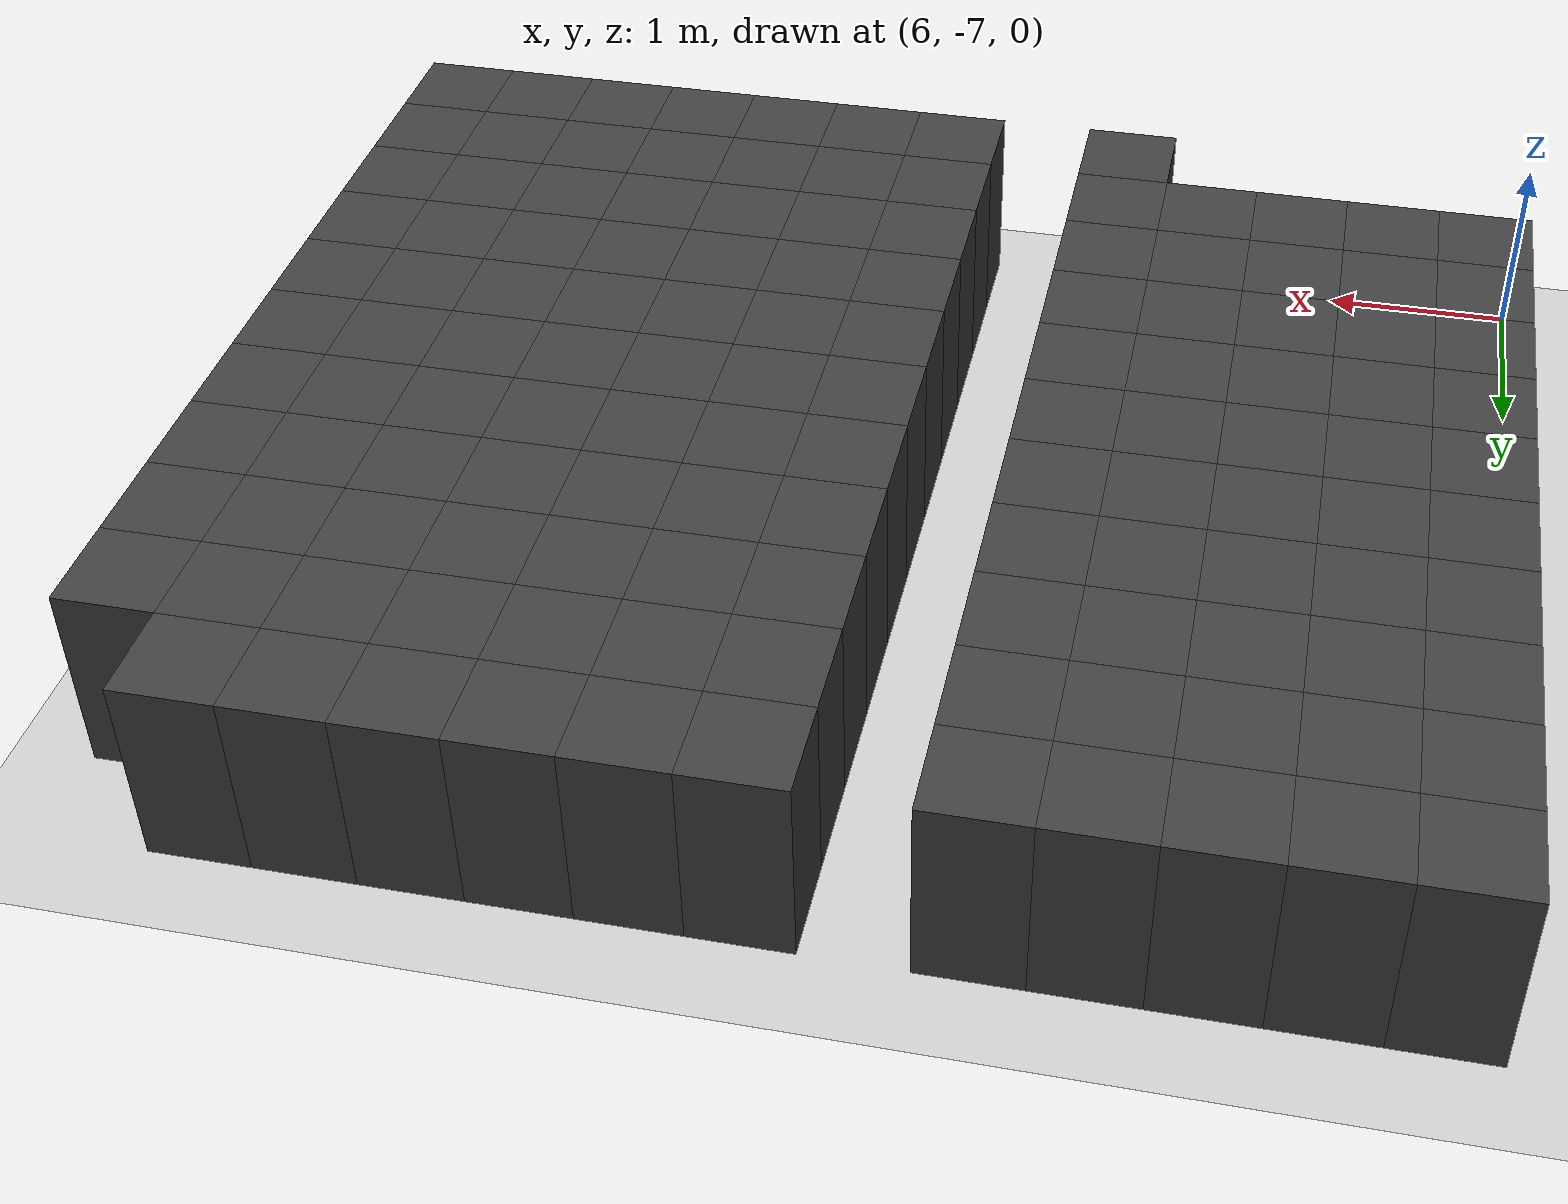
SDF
<sdf version="1.7">
 <world name="map_11672">
  <model name="ground_plane">
   <static>true</static>
   <link name="link">
    <collision name="collision">
     <geometry><plane><normal>0 0 1</normal><size>200 200</size></plane></geometry>
    </collision>
    <visual name="visual">
     <geometry><plane><normal>0 0 1</normal><size>200 200</size></plane></geometry>
     <material><ambient>0.8 0.8 0.8 1</ambient><diffuse>0.8 0.8 0.8 1</diffuse></material>
    </visual>
   </link>
  </model>
  <model name="maze_environment">
   <static>true</static>
   <link name="wall_1183">
    <pose>6.250 -1.750 0.500 0 0 0</pose>
    <collision name="col"><geometry><box><size>0.5 0.5 1.0</size></box></geometry></collision>
    <visual name="vis">
     <geometry><box><size>0.5 0.5 1.0</size></box></geometry>
     <material><ambient>0.15 0.15 0.15 1</ambient><diffuse>0.25 0.25 0.25 1</diffuse></material>
    </visual>
   </link>
   <link name="wall_1184">
    <pose>6.750 -1.750 0.500 0 0 0</pose>
    <collision name="col"><geometry><box><size>0.5 0.5 1.0</size></box></geometry></collision>
    <visual name="vis">
     <geometry><box><size>0.5 0.5 1.0</size></box></geometry>
     <material><ambient>0.15 0.15 0.15 1</ambient><diffuse>0.25 0.25 0.25 1</diffuse></material>
    </visual>
   </link>
   <link name="wall_1185">
    <pose>7.250 -1.750 0.500 0 0 0</pose>
    <collision name="col"><geometry><box><size>0.5 0.5 1.0</size></box></geometry></collision>
    <visual name="vis">
     <geometry><box><size>0.5 0.5 1.0</size></box></geometry>
     <material><ambient>0.15 0.15 0.15 1</ambient><diffuse>0.25 0.25 0.25 1</diffuse></material>
    </visual>
   </link>
   <link name="wall_1186">
    <pose>7.750 -1.750 0.500 0 0 0</pose>
    <collision name="col"><geometry><box><size>0.5 0.5 1.0</size></box></geometry></collision>
    <visual name="vis">
     <geometry><box><size>0.5 0.5 1.0</size></box></geometry>
     <material><ambient>0.15 0.15 0.15 1</ambient><diffuse>0.25 0.25 0.25 1</diffuse></material>
    </visual>
   </link>
   <link name="wall_1187">
    <pose>8.250 -1.750 0.500 0 0 0</pose>
    <collision name="col"><geometry><box><size>0.5 0.5 1.0</size></box></geometry></collision>
    <visual name="vis">
     <geometry><box><size>0.5 0.5 1.0</size></box></geometry>
     <material><ambient>0.15 0.15 0.15 1</ambient><diffuse>0.25 0.25 0.25 1</diffuse></material>
    </visual>
   </link>
   <link name="wall_1188">
    <pose>9.250 -1.750 0.500 0 0 0</pose>
    <collision name="col"><geometry><box><size>0.5 0.5 1.0</size></box></geometry></collision>
    <visual name="vis">
     <geometry><box><size>0.5 0.5 1.0</size></box></geometry>
     <material><ambient>0.15 0.15 0.15 1</ambient><diffuse>0.25 0.25 0.25 1</diffuse></material>
    </visual>
   </link>
   <link name="wall_1189">
    <pose>9.750 -1.750 0.500 0 0 0</pose>
    <collision name="col"><geometry><box><size>0.5 0.5 1.0</size></box></geometry></collision>
    <visual name="vis">
     <geometry><box><size>0.5 0.5 1.0</size></box></geometry>
     <material><ambient>0.15 0.15 0.15 1</ambient><diffuse>0.25 0.25 0.25 1</diffuse></material>
    </visual>
   </link>
   <link name="wall_1190">
    <pose>10.250 -1.750 0.500 0 0 0</pose>
    <collision name="col"><geometry><box><size>0.5 0.5 1.0</size></box></geometry></collision>
    <visual name="vis">
     <geometry><box><size>0.5 0.5 1.0</size></box></geometry>
     <material><ambient>0.15 0.15 0.15 1</ambient><diffuse>0.25 0.25 0.25 1</diffuse></material>
    </visual>
   </link>
   <link name="wall_1191">
    <pose>10.750 -1.750 0.500 0 0 0</pose>
    <collision name="col"><geometry><box><size>0.5 0.5 1.0</size></box></geometry></collision>
    <visual name="vis">
     <geometry><box><size>0.5 0.5 1.0</size></box></geometry>
     <material><ambient>0.15 0.15 0.15 1</ambient><diffuse>0.25 0.25 0.25 1</diffuse></material>
    </visual>
   </link>
   <link name="wall_1192">
    <pose>11.250 -1.750 0.500 0 0 0</pose>
    <collision name="col"><geometry><box><size>0.5 0.5 1.0</size></box></geometry></collision>
    <visual name="vis">
     <geometry><box><size>0.5 0.5 1.0</size></box></geometry>
     <material><ambient>0.15 0.15 0.15 1</ambient><diffuse>0.25 0.25 0.25 1</diffuse></material>
    </visual>
   </link>
   <link name="wall_1193">
    <pose>11.750 -1.750 0.500 0 0 0</pose>
    <collision name="col"><geometry><box><size>0.5 0.5 1.0</size></box></geometry></collision>
    <visual name="vis">
     <geometry><box><size>0.5 0.5 1.0</size></box></geometry>
     <material><ambient>0.15 0.15 0.15 1</ambient><diffuse>0.25 0.25 0.25 1</diffuse></material>
    </visual>
   </link>
   <link name="wall_1228">
    <pose>6.250 -2.250 0.500 0 0 0</pose>
    <collision name="col"><geometry><box><size>0.5 0.5 1.0</size></box></geometry></collision>
    <visual name="vis">
     <geometry><box><size>0.5 0.5 1.0</size></box></geometry>
     <material><ambient>0.15 0.15 0.15 1</ambient><diffuse>0.25 0.25 0.25 1</diffuse></material>
    </visual>
   </link>
   <link name="wall_1229">
    <pose>6.750 -2.250 0.500 0 0 0</pose>
    <collision name="col"><geometry><box><size>0.5 0.5 1.0</size></box></geometry></collision>
    <visual name="vis">
     <geometry><box><size>0.5 0.5 1.0</size></box></geometry>
     <material><ambient>0.15 0.15 0.15 1</ambient><diffuse>0.25 0.25 0.25 1</diffuse></material>
    </visual>
   </link>
   <link name="wall_1230">
    <pose>7.250 -2.250 0.500 0 0 0</pose>
    <collision name="col"><geometry><box><size>0.5 0.5 1.0</size></box></geometry></collision>
    <visual name="vis">
     <geometry><box><size>0.5 0.5 1.0</size></box></geometry>
     <material><ambient>0.15 0.15 0.15 1</ambient><diffuse>0.25 0.25 0.25 1</diffuse></material>
    </visual>
   </link>
   <link name="wall_1231">
    <pose>7.750 -2.250 0.500 0 0 0</pose>
    <collision name="col"><geometry><box><size>0.5 0.5 1.0</size></box></geometry></collision>
    <visual name="vis">
     <geometry><box><size>0.5 0.5 1.0</size></box></geometry>
     <material><ambient>0.15 0.15 0.15 1</ambient><diffuse>0.25 0.25 0.25 1</diffuse></material>
    </visual>
   </link>
   <link name="wall_1232">
    <pose>8.250 -2.250 0.500 0 0 0</pose>
    <collision name="col"><geometry><box><size>0.5 0.5 1.0</size></box></geometry></collision>
    <visual name="vis">
     <geometry><box><size>0.5 0.5 1.0</size></box></geometry>
     <material><ambient>0.15 0.15 0.15 1</ambient><diffuse>0.25 0.25 0.25 1</diffuse></material>
    </visual>
   </link>
   <link name="wall_1233">
    <pose>9.250 -2.250 0.500 0 0 0</pose>
    <collision name="col"><geometry><box><size>0.5 0.5 1.0</size></box></geometry></collision>
    <visual name="vis">
     <geometry><box><size>0.5 0.5 1.0</size></box></geometry>
     <material><ambient>0.15 0.15 0.15 1</ambient><diffuse>0.25 0.25 0.25 1</diffuse></material>
    </visual>
   </link>
   <link name="wall_1234">
    <pose>9.750 -2.250 0.500 0 0 0</pose>
    <collision name="col"><geometry><box><size>0.5 0.5 1.0</size></box></geometry></collision>
    <visual name="vis">
     <geometry><box><size>0.5 0.5 1.0</size></box></geometry>
     <material><ambient>0.15 0.15 0.15 1</ambient><diffuse>0.25 0.25 0.25 1</diffuse></material>
    </visual>
   </link>
   <link name="wall_1235">
    <pose>10.250 -2.250 0.500 0 0 0</pose>
    <collision name="col"><geometry><box><size>0.5 0.5 1.0</size></box></geometry></collision>
    <visual name="vis">
     <geometry><box><size>0.5 0.5 1.0</size></box></geometry>
     <material><ambient>0.15 0.15 0.15 1</ambient><diffuse>0.25 0.25 0.25 1</diffuse></material>
    </visual>
   </link>
   <link name="wall_1236">
    <pose>10.750 -2.250 0.500 0 0 0</pose>
    <collision name="col"><geometry><box><size>0.5 0.5 1.0</size></box></geometry></collision>
    <visual name="vis">
     <geometry><box><size>0.5 0.5 1.0</size></box></geometry>
     <material><ambient>0.15 0.15 0.15 1</ambient><diffuse>0.25 0.25 0.25 1</diffuse></material>
    </visual>
   </link>
   <link name="wall_1237">
    <pose>11.250 -2.250 0.500 0 0 0</pose>
    <collision name="col"><geometry><box><size>0.5 0.5 1.0</size></box></geometry></collision>
    <visual name="vis">
     <geometry><box><size>0.5 0.5 1.0</size></box></geometry>
     <material><ambient>0.15 0.15 0.15 1</ambient><diffuse>0.25 0.25 0.25 1</diffuse></material>
    </visual>
   </link>
   <link name="wall_1238">
    <pose>11.750 -2.250 0.500 0 0 0</pose>
    <collision name="col"><geometry><box><size>0.5 0.5 1.0</size></box></geometry></collision>
    <visual name="vis">
     <geometry><box><size>0.5 0.5 1.0</size></box></geometry>
     <material><ambient>0.15 0.15 0.15 1</ambient><diffuse>0.25 0.25 0.25 1</diffuse></material>
    </visual>
   </link>
   <link name="wall_1239">
    <pose>12.250 -2.250 0.500 0 0 0</pose>
    <collision name="col"><geometry><box><size>0.5 0.5 1.0</size></box></geometry></collision>
    <visual name="vis">
     <geometry><box><size>0.5 0.5 1.0</size></box></geometry>
     <material><ambient>0.15 0.15 0.15 1</ambient><diffuse>0.25 0.25 0.25 1</diffuse></material>
    </visual>
   </link>
   <link name="wall_1267">
    <pose>6.250 -2.750 0.500 0 0 0</pose>
    <collision name="col"><geometry><box><size>0.5 0.5 1.0</size></box></geometry></collision>
    <visual name="vis">
     <geometry><box><size>0.5 0.5 1.0</size></box></geometry>
     <material><ambient>0.15 0.15 0.15 1</ambient><diffuse>0.25 0.25 0.25 1</diffuse></material>
    </visual>
   </link>
   <link name="wall_1268">
    <pose>6.750 -2.750 0.500 0 0 0</pose>
    <collision name="col"><geometry><box><size>0.5 0.5 1.0</size></box></geometry></collision>
    <visual name="vis">
     <geometry><box><size>0.5 0.5 1.0</size></box></geometry>
     <material><ambient>0.15 0.15 0.15 1</ambient><diffuse>0.25 0.25 0.25 1</diffuse></material>
    </visual>
   </link>
   <link name="wall_1269">
    <pose>7.250 -2.750 0.500 0 0 0</pose>
    <collision name="col"><geometry><box><size>0.5 0.5 1.0</size></box></geometry></collision>
    <visual name="vis">
     <geometry><box><size>0.5 0.5 1.0</size></box></geometry>
     <material><ambient>0.15 0.15 0.15 1</ambient><diffuse>0.25 0.25 0.25 1</diffuse></material>
    </visual>
   </link>
   <link name="wall_1270">
    <pose>7.750 -2.750 0.500 0 0 0</pose>
    <collision name="col"><geometry><box><size>0.5 0.5 1.0</size></box></geometry></collision>
    <visual name="vis">
     <geometry><box><size>0.5 0.5 1.0</size></box></geometry>
     <material><ambient>0.15 0.15 0.15 1</ambient><diffuse>0.25 0.25 0.25 1</diffuse></material>
    </visual>
   </link>
   <link name="wall_1271">
    <pose>8.250 -2.750 0.500 0 0 0</pose>
    <collision name="col"><geometry><box><size>0.5 0.5 1.0</size></box></geometry></collision>
    <visual name="vis">
     <geometry><box><size>0.5 0.5 1.0</size></box></geometry>
     <material><ambient>0.15 0.15 0.15 1</ambient><diffuse>0.25 0.25 0.25 1</diffuse></material>
    </visual>
   </link>
   <link name="wall_1272">
    <pose>9.250 -2.750 0.500 0 0 0</pose>
    <collision name="col"><geometry><box><size>0.5 0.5 1.0</size></box></geometry></collision>
    <visual name="vis">
     <geometry><box><size>0.5 0.5 1.0</size></box></geometry>
     <material><ambient>0.15 0.15 0.15 1</ambient><diffuse>0.25 0.25 0.25 1</diffuse></material>
    </visual>
   </link>
   <link name="wall_1273">
    <pose>9.750 -2.750 0.500 0 0 0</pose>
    <collision name="col"><geometry><box><size>0.5 0.5 1.0</size></box></geometry></collision>
    <visual name="vis">
     <geometry><box><size>0.5 0.5 1.0</size></box></geometry>
     <material><ambient>0.15 0.15 0.15 1</ambient><diffuse>0.25 0.25 0.25 1</diffuse></material>
    </visual>
   </link>
   <link name="wall_1274">
    <pose>10.250 -2.750 0.500 0 0 0</pose>
    <collision name="col"><geometry><box><size>0.5 0.5 1.0</size></box></geometry></collision>
    <visual name="vis">
     <geometry><box><size>0.5 0.5 1.0</size></box></geometry>
     <material><ambient>0.15 0.15 0.15 1</ambient><diffuse>0.25 0.25 0.25 1</diffuse></material>
    </visual>
   </link>
   <link name="wall_1275">
    <pose>10.750 -2.750 0.500 0 0 0</pose>
    <collision name="col"><geometry><box><size>0.5 0.5 1.0</size></box></geometry></collision>
    <visual name="vis">
     <geometry><box><size>0.5 0.5 1.0</size></box></geometry>
     <material><ambient>0.15 0.15 0.15 1</ambient><diffuse>0.25 0.25 0.25 1</diffuse></material>
    </visual>
   </link>
   <link name="wall_1276">
    <pose>11.250 -2.750 0.500 0 0 0</pose>
    <collision name="col"><geometry><box><size>0.5 0.5 1.0</size></box></geometry></collision>
    <visual name="vis">
     <geometry><box><size>0.5 0.5 1.0</size></box></geometry>
     <material><ambient>0.15 0.15 0.15 1</ambient><diffuse>0.25 0.25 0.25 1</diffuse></material>
    </visual>
   </link>
   <link name="wall_1277">
    <pose>11.750 -2.750 0.500 0 0 0</pose>
    <collision name="col"><geometry><box><size>0.5 0.5 1.0</size></box></geometry></collision>
    <visual name="vis">
     <geometry><box><size>0.5 0.5 1.0</size></box></geometry>
     <material><ambient>0.15 0.15 0.15 1</ambient><diffuse>0.25 0.25 0.25 1</diffuse></material>
    </visual>
   </link>
   <link name="wall_1278">
    <pose>12.250 -2.750 0.500 0 0 0</pose>
    <collision name="col"><geometry><box><size>0.5 0.5 1.0</size></box></geometry></collision>
    <visual name="vis">
     <geometry><box><size>0.5 0.5 1.0</size></box></geometry>
     <material><ambient>0.15 0.15 0.15 1</ambient><diffuse>0.25 0.25 0.25 1</diffuse></material>
    </visual>
   </link>
   <link name="wall_1306">
    <pose>6.250 -3.250 0.500 0 0 0</pose>
    <collision name="col"><geometry><box><size>0.5 0.5 1.0</size></box></geometry></collision>
    <visual name="vis">
     <geometry><box><size>0.5 0.5 1.0</size></box></geometry>
     <material><ambient>0.15 0.15 0.15 1</ambient><diffuse>0.25 0.25 0.25 1</diffuse></material>
    </visual>
   </link>
   <link name="wall_1307">
    <pose>6.750 -3.250 0.500 0 0 0</pose>
    <collision name="col"><geometry><box><size>0.5 0.5 1.0</size></box></geometry></collision>
    <visual name="vis">
     <geometry><box><size>0.5 0.5 1.0</size></box></geometry>
     <material><ambient>0.15 0.15 0.15 1</ambient><diffuse>0.25 0.25 0.25 1</diffuse></material>
    </visual>
   </link>
   <link name="wall_1308">
    <pose>7.250 -3.250 0.500 0 0 0</pose>
    <collision name="col"><geometry><box><size>0.5 0.5 1.0</size></box></geometry></collision>
    <visual name="vis">
     <geometry><box><size>0.5 0.5 1.0</size></box></geometry>
     <material><ambient>0.15 0.15 0.15 1</ambient><diffuse>0.25 0.25 0.25 1</diffuse></material>
    </visual>
   </link>
   <link name="wall_1309">
    <pose>7.750 -3.250 0.500 0 0 0</pose>
    <collision name="col"><geometry><box><size>0.5 0.5 1.0</size></box></geometry></collision>
    <visual name="vis">
     <geometry><box><size>0.5 0.5 1.0</size></box></geometry>
     <material><ambient>0.15 0.15 0.15 1</ambient><diffuse>0.25 0.25 0.25 1</diffuse></material>
    </visual>
   </link>
   <link name="wall_1310">
    <pose>8.250 -3.250 0.500 0 0 0</pose>
    <collision name="col"><geometry><box><size>0.5 0.5 1.0</size></box></geometry></collision>
    <visual name="vis">
     <geometry><box><size>0.5 0.5 1.0</size></box></geometry>
     <material><ambient>0.15 0.15 0.15 1</ambient><diffuse>0.25 0.25 0.25 1</diffuse></material>
    </visual>
   </link>
   <link name="wall_1311">
    <pose>9.250 -3.250 0.500 0 0 0</pose>
    <collision name="col"><geometry><box><size>0.5 0.5 1.0</size></box></geometry></collision>
    <visual name="vis">
     <geometry><box><size>0.5 0.5 1.0</size></box></geometry>
     <material><ambient>0.15 0.15 0.15 1</ambient><diffuse>0.25 0.25 0.25 1</diffuse></material>
    </visual>
   </link>
   <link name="wall_1312">
    <pose>9.750 -3.250 0.500 0 0 0</pose>
    <collision name="col"><geometry><box><size>0.5 0.5 1.0</size></box></geometry></collision>
    <visual name="vis">
     <geometry><box><size>0.5 0.5 1.0</size></box></geometry>
     <material><ambient>0.15 0.15 0.15 1</ambient><diffuse>0.25 0.25 0.25 1</diffuse></material>
    </visual>
   </link>
   <link name="wall_1313">
    <pose>10.250 -3.250 0.500 0 0 0</pose>
    <collision name="col"><geometry><box><size>0.5 0.5 1.0</size></box></geometry></collision>
    <visual name="vis">
     <geometry><box><size>0.5 0.5 1.0</size></box></geometry>
     <material><ambient>0.15 0.15 0.15 1</ambient><diffuse>0.25 0.25 0.25 1</diffuse></material>
    </visual>
   </link>
   <link name="wall_1314">
    <pose>10.750 -3.250 0.500 0 0 0</pose>
    <collision name="col"><geometry><box><size>0.5 0.5 1.0</size></box></geometry></collision>
    <visual name="vis">
     <geometry><box><size>0.5 0.5 1.0</size></box></geometry>
     <material><ambient>0.15 0.15 0.15 1</ambient><diffuse>0.25 0.25 0.25 1</diffuse></material>
    </visual>
   </link>
   <link name="wall_1315">
    <pose>11.250 -3.250 0.500 0 0 0</pose>
    <collision name="col"><geometry><box><size>0.5 0.5 1.0</size></box></geometry></collision>
    <visual name="vis">
     <geometry><box><size>0.5 0.5 1.0</size></box></geometry>
     <material><ambient>0.15 0.15 0.15 1</ambient><diffuse>0.25 0.25 0.25 1</diffuse></material>
    </visual>
   </link>
   <link name="wall_1316">
    <pose>11.750 -3.250 0.500 0 0 0</pose>
    <collision name="col"><geometry><box><size>0.5 0.5 1.0</size></box></geometry></collision>
    <visual name="vis">
     <geometry><box><size>0.5 0.5 1.0</size></box></geometry>
     <material><ambient>0.15 0.15 0.15 1</ambient><diffuse>0.25 0.25 0.25 1</diffuse></material>
    </visual>
   </link>
   <link name="wall_1317">
    <pose>12.250 -3.250 0.500 0 0 0</pose>
    <collision name="col"><geometry><box><size>0.5 0.5 1.0</size></box></geometry></collision>
    <visual name="vis">
     <geometry><box><size>0.5 0.5 1.0</size></box></geometry>
     <material><ambient>0.15 0.15 0.15 1</ambient><diffuse>0.25 0.25 0.25 1</diffuse></material>
    </visual>
   </link>
   <link name="wall_1345">
    <pose>6.250 -3.750 0.500 0 0 0</pose>
    <collision name="col"><geometry><box><size>0.5 0.5 1.0</size></box></geometry></collision>
    <visual name="vis">
     <geometry><box><size>0.5 0.5 1.0</size></box></geometry>
     <material><ambient>0.15 0.15 0.15 1</ambient><diffuse>0.25 0.25 0.25 1</diffuse></material>
    </visual>
   </link>
   <link name="wall_1346">
    <pose>6.750 -3.750 0.500 0 0 0</pose>
    <collision name="col"><geometry><box><size>0.5 0.5 1.0</size></box></geometry></collision>
    <visual name="vis">
     <geometry><box><size>0.5 0.5 1.0</size></box></geometry>
     <material><ambient>0.15 0.15 0.15 1</ambient><diffuse>0.25 0.25 0.25 1</diffuse></material>
    </visual>
   </link>
   <link name="wall_1347">
    <pose>7.250 -3.750 0.500 0 0 0</pose>
    <collision name="col"><geometry><box><size>0.5 0.5 1.0</size></box></geometry></collision>
    <visual name="vis">
     <geometry><box><size>0.5 0.5 1.0</size></box></geometry>
     <material><ambient>0.15 0.15 0.15 1</ambient><diffuse>0.25 0.25 0.25 1</diffuse></material>
    </visual>
   </link>
   <link name="wall_1348">
    <pose>7.750 -3.750 0.500 0 0 0</pose>
    <collision name="col"><geometry><box><size>0.5 0.5 1.0</size></box></geometry></collision>
    <visual name="vis">
     <geometry><box><size>0.5 0.5 1.0</size></box></geometry>
     <material><ambient>0.15 0.15 0.15 1</ambient><diffuse>0.25 0.25 0.25 1</diffuse></material>
    </visual>
   </link>
   <link name="wall_1349">
    <pose>8.250 -3.750 0.500 0 0 0</pose>
    <collision name="col"><geometry><box><size>0.5 0.5 1.0</size></box></geometry></collision>
    <visual name="vis">
     <geometry><box><size>0.5 0.5 1.0</size></box></geometry>
     <material><ambient>0.15 0.15 0.15 1</ambient><diffuse>0.25 0.25 0.25 1</diffuse></material>
    </visual>
   </link>
   <link name="wall_1350">
    <pose>9.250 -3.750 0.500 0 0 0</pose>
    <collision name="col"><geometry><box><size>0.5 0.5 1.0</size></box></geometry></collision>
    <visual name="vis">
     <geometry><box><size>0.5 0.5 1.0</size></box></geometry>
     <material><ambient>0.15 0.15 0.15 1</ambient><diffuse>0.25 0.25 0.25 1</diffuse></material>
    </visual>
   </link>
   <link name="wall_1351">
    <pose>9.750 -3.750 0.500 0 0 0</pose>
    <collision name="col"><geometry><box><size>0.5 0.5 1.0</size></box></geometry></collision>
    <visual name="vis">
     <geometry><box><size>0.5 0.5 1.0</size></box></geometry>
     <material><ambient>0.15 0.15 0.15 1</ambient><diffuse>0.25 0.25 0.25 1</diffuse></material>
    </visual>
   </link>
   <link name="wall_1352">
    <pose>10.250 -3.750 0.500 0 0 0</pose>
    <collision name="col"><geometry><box><size>0.5 0.5 1.0</size></box></geometry></collision>
    <visual name="vis">
     <geometry><box><size>0.5 0.5 1.0</size></box></geometry>
     <material><ambient>0.15 0.15 0.15 1</ambient><diffuse>0.25 0.25 0.25 1</diffuse></material>
    </visual>
   </link>
   <link name="wall_1353">
    <pose>10.750 -3.750 0.500 0 0 0</pose>
    <collision name="col"><geometry><box><size>0.5 0.5 1.0</size></box></geometry></collision>
    <visual name="vis">
     <geometry><box><size>0.5 0.5 1.0</size></box></geometry>
     <material><ambient>0.15 0.15 0.15 1</ambient><diffuse>0.25 0.25 0.25 1</diffuse></material>
    </visual>
   </link>
   <link name="wall_1354">
    <pose>11.250 -3.750 0.500 0 0 0</pose>
    <collision name="col"><geometry><box><size>0.5 0.5 1.0</size></box></geometry></collision>
    <visual name="vis">
     <geometry><box><size>0.5 0.5 1.0</size></box></geometry>
     <material><ambient>0.15 0.15 0.15 1</ambient><diffuse>0.25 0.25 0.25 1</diffuse></material>
    </visual>
   </link>
   <link name="wall_1355">
    <pose>11.750 -3.750 0.500 0 0 0</pose>
    <collision name="col"><geometry><box><size>0.5 0.5 1.0</size></box></geometry></collision>
    <visual name="vis">
     <geometry><box><size>0.5 0.5 1.0</size></box></geometry>
     <material><ambient>0.15 0.15 0.15 1</ambient><diffuse>0.25 0.25 0.25 1</diffuse></material>
    </visual>
   </link>
   <link name="wall_1356">
    <pose>12.250 -3.750 0.500 0 0 0</pose>
    <collision name="col"><geometry><box><size>0.5 0.5 1.0</size></box></geometry></collision>
    <visual name="vis">
     <geometry><box><size>0.5 0.5 1.0</size></box></geometry>
     <material><ambient>0.15 0.15 0.15 1</ambient><diffuse>0.25 0.25 0.25 1</diffuse></material>
    </visual>
   </link>
   <link name="wall_1383">
    <pose>6.250 -4.250 0.500 0 0 0</pose>
    <collision name="col"><geometry><box><size>0.5 0.5 1.0</size></box></geometry></collision>
    <visual name="vis">
     <geometry><box><size>0.5 0.5 1.0</size></box></geometry>
     <material><ambient>0.15 0.15 0.15 1</ambient><diffuse>0.25 0.25 0.25 1</diffuse></material>
    </visual>
   </link>
   <link name="wall_1384">
    <pose>6.750 -4.250 0.500 0 0 0</pose>
    <collision name="col"><geometry><box><size>0.5 0.5 1.0</size></box></geometry></collision>
    <visual name="vis">
     <geometry><box><size>0.5 0.5 1.0</size></box></geometry>
     <material><ambient>0.15 0.15 0.15 1</ambient><diffuse>0.25 0.25 0.25 1</diffuse></material>
    </visual>
   </link>
   <link name="wall_1385">
    <pose>7.250 -4.250 0.500 0 0 0</pose>
    <collision name="col"><geometry><box><size>0.5 0.5 1.0</size></box></geometry></collision>
    <visual name="vis">
     <geometry><box><size>0.5 0.5 1.0</size></box></geometry>
     <material><ambient>0.15 0.15 0.15 1</ambient><diffuse>0.25 0.25 0.25 1</diffuse></material>
    </visual>
   </link>
   <link name="wall_1386">
    <pose>7.750 -4.250 0.500 0 0 0</pose>
    <collision name="col"><geometry><box><size>0.5 0.5 1.0</size></box></geometry></collision>
    <visual name="vis">
     <geometry><box><size>0.5 0.5 1.0</size></box></geometry>
     <material><ambient>0.15 0.15 0.15 1</ambient><diffuse>0.25 0.25 0.25 1</diffuse></material>
    </visual>
   </link>
   <link name="wall_1387">
    <pose>8.250 -4.250 0.500 0 0 0</pose>
    <collision name="col"><geometry><box><size>0.5 0.5 1.0</size></box></geometry></collision>
    <visual name="vis">
     <geometry><box><size>0.5 0.5 1.0</size></box></geometry>
     <material><ambient>0.15 0.15 0.15 1</ambient><diffuse>0.25 0.25 0.25 1</diffuse></material>
    </visual>
   </link>
   <link name="wall_1388">
    <pose>9.250 -4.250 0.500 0 0 0</pose>
    <collision name="col"><geometry><box><size>0.5 0.5 1.0</size></box></geometry></collision>
    <visual name="vis">
     <geometry><box><size>0.5 0.5 1.0</size></box></geometry>
     <material><ambient>0.15 0.15 0.15 1</ambient><diffuse>0.25 0.25 0.25 1</diffuse></material>
    </visual>
   </link>
   <link name="wall_1389">
    <pose>9.750 -4.250 0.500 0 0 0</pose>
    <collision name="col"><geometry><box><size>0.5 0.5 1.0</size></box></geometry></collision>
    <visual name="vis">
     <geometry><box><size>0.5 0.5 1.0</size></box></geometry>
     <material><ambient>0.15 0.15 0.15 1</ambient><diffuse>0.25 0.25 0.25 1</diffuse></material>
    </visual>
   </link>
   <link name="wall_1390">
    <pose>10.250 -4.250 0.500 0 0 0</pose>
    <collision name="col"><geometry><box><size>0.5 0.5 1.0</size></box></geometry></collision>
    <visual name="vis">
     <geometry><box><size>0.5 0.5 1.0</size></box></geometry>
     <material><ambient>0.15 0.15 0.15 1</ambient><diffuse>0.25 0.25 0.25 1</diffuse></material>
    </visual>
   </link>
   <link name="wall_1391">
    <pose>10.750 -4.250 0.500 0 0 0</pose>
    <collision name="col"><geometry><box><size>0.5 0.5 1.0</size></box></geometry></collision>
    <visual name="vis">
     <geometry><box><size>0.5 0.5 1.0</size></box></geometry>
     <material><ambient>0.15 0.15 0.15 1</ambient><diffuse>0.25 0.25 0.25 1</diffuse></material>
    </visual>
   </link>
   <link name="wall_1392">
    <pose>11.250 -4.250 0.500 0 0 0</pose>
    <collision name="col"><geometry><box><size>0.5 0.5 1.0</size></box></geometry></collision>
    <visual name="vis">
     <geometry><box><size>0.5 0.5 1.0</size></box></geometry>
     <material><ambient>0.15 0.15 0.15 1</ambient><diffuse>0.25 0.25 0.25 1</diffuse></material>
    </visual>
   </link>
   <link name="wall_1393">
    <pose>11.750 -4.250 0.500 0 0 0</pose>
    <collision name="col"><geometry><box><size>0.5 0.5 1.0</size></box></geometry></collision>
    <visual name="vis">
     <geometry><box><size>0.5 0.5 1.0</size></box></geometry>
     <material><ambient>0.15 0.15 0.15 1</ambient><diffuse>0.25 0.25 0.25 1</diffuse></material>
    </visual>
   </link>
   <link name="wall_1394">
    <pose>12.250 -4.250 0.500 0 0 0</pose>
    <collision name="col"><geometry><box><size>0.5 0.5 1.0</size></box></geometry></collision>
    <visual name="vis">
     <geometry><box><size>0.5 0.5 1.0</size></box></geometry>
     <material><ambient>0.15 0.15 0.15 1</ambient><diffuse>0.25 0.25 0.25 1</diffuse></material>
    </visual>
   </link>
   <link name="wall_1426">
    <pose>6.250 -4.750 0.500 0 0 0</pose>
    <collision name="col"><geometry><box><size>0.5 0.5 1.0</size></box></geometry></collision>
    <visual name="vis">
     <geometry><box><size>0.5 0.5 1.0</size></box></geometry>
     <material><ambient>0.15 0.15 0.15 1</ambient><diffuse>0.25 0.25 0.25 1</diffuse></material>
    </visual>
   </link>
   <link name="wall_1427">
    <pose>6.750 -4.750 0.500 0 0 0</pose>
    <collision name="col"><geometry><box><size>0.5 0.5 1.0</size></box></geometry></collision>
    <visual name="vis">
     <geometry><box><size>0.5 0.5 1.0</size></box></geometry>
     <material><ambient>0.15 0.15 0.15 1</ambient><diffuse>0.25 0.25 0.25 1</diffuse></material>
    </visual>
   </link>
   <link name="wall_1428">
    <pose>7.250 -4.750 0.500 0 0 0</pose>
    <collision name="col"><geometry><box><size>0.5 0.5 1.0</size></box></geometry></collision>
    <visual name="vis">
     <geometry><box><size>0.5 0.5 1.0</size></box></geometry>
     <material><ambient>0.15 0.15 0.15 1</ambient><diffuse>0.25 0.25 0.25 1</diffuse></material>
    </visual>
   </link>
   <link name="wall_1429">
    <pose>7.750 -4.750 0.500 0 0 0</pose>
    <collision name="col"><geometry><box><size>0.5 0.5 1.0</size></box></geometry></collision>
    <visual name="vis">
     <geometry><box><size>0.5 0.5 1.0</size></box></geometry>
     <material><ambient>0.15 0.15 0.15 1</ambient><diffuse>0.25 0.25 0.25 1</diffuse></material>
    </visual>
   </link>
   <link name="wall_1430">
    <pose>8.250 -4.750 0.500 0 0 0</pose>
    <collision name="col"><geometry><box><size>0.5 0.5 1.0</size></box></geometry></collision>
    <visual name="vis">
     <geometry><box><size>0.5 0.5 1.0</size></box></geometry>
     <material><ambient>0.15 0.15 0.15 1</ambient><diffuse>0.25 0.25 0.25 1</diffuse></material>
    </visual>
   </link>
   <link name="wall_1431">
    <pose>9.250 -4.750 0.500 0 0 0</pose>
    <collision name="col"><geometry><box><size>0.5 0.5 1.0</size></box></geometry></collision>
    <visual name="vis">
     <geometry><box><size>0.5 0.5 1.0</size></box></geometry>
     <material><ambient>0.15 0.15 0.15 1</ambient><diffuse>0.25 0.25 0.25 1</diffuse></material>
    </visual>
   </link>
   <link name="wall_1432">
    <pose>9.750 -4.750 0.500 0 0 0</pose>
    <collision name="col"><geometry><box><size>0.5 0.5 1.0</size></box></geometry></collision>
    <visual name="vis">
     <geometry><box><size>0.5 0.5 1.0</size></box></geometry>
     <material><ambient>0.15 0.15 0.15 1</ambient><diffuse>0.25 0.25 0.25 1</diffuse></material>
    </visual>
   </link>
   <link name="wall_1433">
    <pose>10.250 -4.750 0.500 0 0 0</pose>
    <collision name="col"><geometry><box><size>0.5 0.5 1.0</size></box></geometry></collision>
    <visual name="vis">
     <geometry><box><size>0.5 0.5 1.0</size></box></geometry>
     <material><ambient>0.15 0.15 0.15 1</ambient><diffuse>0.25 0.25 0.25 1</diffuse></material>
    </visual>
   </link>
   <link name="wall_1434">
    <pose>10.750 -4.750 0.500 0 0 0</pose>
    <collision name="col"><geometry><box><size>0.5 0.5 1.0</size></box></geometry></collision>
    <visual name="vis">
     <geometry><box><size>0.5 0.5 1.0</size></box></geometry>
     <material><ambient>0.15 0.15 0.15 1</ambient><diffuse>0.25 0.25 0.25 1</diffuse></material>
    </visual>
   </link>
   <link name="wall_1435">
    <pose>11.250 -4.750 0.500 0 0 0</pose>
    <collision name="col"><geometry><box><size>0.5 0.5 1.0</size></box></geometry></collision>
    <visual name="vis">
     <geometry><box><size>0.5 0.5 1.0</size></box></geometry>
     <material><ambient>0.15 0.15 0.15 1</ambient><diffuse>0.25 0.25 0.25 1</diffuse></material>
    </visual>
   </link>
   <link name="wall_1436">
    <pose>11.750 -4.750 0.500 0 0 0</pose>
    <collision name="col"><geometry><box><size>0.5 0.5 1.0</size></box></geometry></collision>
    <visual name="vis">
     <geometry><box><size>0.5 0.5 1.0</size></box></geometry>
     <material><ambient>0.15 0.15 0.15 1</ambient><diffuse>0.25 0.25 0.25 1</diffuse></material>
    </visual>
   </link>
   <link name="wall_1437">
    <pose>12.250 -4.750 0.500 0 0 0</pose>
    <collision name="col"><geometry><box><size>0.5 0.5 1.0</size></box></geometry></collision>
    <visual name="vis">
     <geometry><box><size>0.5 0.5 1.0</size></box></geometry>
     <material><ambient>0.15 0.15 0.15 1</ambient><diffuse>0.25 0.25 0.25 1</diffuse></material>
    </visual>
   </link>
   <link name="wall_1469">
    <pose>6.250 -5.250 0.500 0 0 0</pose>
    <collision name="col"><geometry><box><size>0.5 0.5 1.0</size></box></geometry></collision>
    <visual name="vis">
     <geometry><box><size>0.5 0.5 1.0</size></box></geometry>
     <material><ambient>0.15 0.15 0.15 1</ambient><diffuse>0.25 0.25 0.25 1</diffuse></material>
    </visual>
   </link>
   <link name="wall_1470">
    <pose>6.750 -5.250 0.500 0 0 0</pose>
    <collision name="col"><geometry><box><size>0.5 0.5 1.0</size></box></geometry></collision>
    <visual name="vis">
     <geometry><box><size>0.5 0.5 1.0</size></box></geometry>
     <material><ambient>0.15 0.15 0.15 1</ambient><diffuse>0.25 0.25 0.25 1</diffuse></material>
    </visual>
   </link>
   <link name="wall_1471">
    <pose>7.250 -5.250 0.500 0 0 0</pose>
    <collision name="col"><geometry><box><size>0.5 0.5 1.0</size></box></geometry></collision>
    <visual name="vis">
     <geometry><box><size>0.5 0.5 1.0</size></box></geometry>
     <material><ambient>0.15 0.15 0.15 1</ambient><diffuse>0.25 0.25 0.25 1</diffuse></material>
    </visual>
   </link>
   <link name="wall_1472">
    <pose>7.750 -5.250 0.500 0 0 0</pose>
    <collision name="col"><geometry><box><size>0.5 0.5 1.0</size></box></geometry></collision>
    <visual name="vis">
     <geometry><box><size>0.5 0.5 1.0</size></box></geometry>
     <material><ambient>0.15 0.15 0.15 1</ambient><diffuse>0.25 0.25 0.25 1</diffuse></material>
    </visual>
   </link>
   <link name="wall_1473">
    <pose>8.250 -5.250 0.500 0 0 0</pose>
    <collision name="col"><geometry><box><size>0.5 0.5 1.0</size></box></geometry></collision>
    <visual name="vis">
     <geometry><box><size>0.5 0.5 1.0</size></box></geometry>
     <material><ambient>0.15 0.15 0.15 1</ambient><diffuse>0.25 0.25 0.25 1</diffuse></material>
    </visual>
   </link>
   <link name="wall_1474">
    <pose>9.250 -5.250 0.500 0 0 0</pose>
    <collision name="col"><geometry><box><size>0.5 0.5 1.0</size></box></geometry></collision>
    <visual name="vis">
     <geometry><box><size>0.5 0.5 1.0</size></box></geometry>
     <material><ambient>0.15 0.15 0.15 1</ambient><diffuse>0.25 0.25 0.25 1</diffuse></material>
    </visual>
   </link>
   <link name="wall_1475">
    <pose>9.750 -5.250 0.500 0 0 0</pose>
    <collision name="col"><geometry><box><size>0.5 0.5 1.0</size></box></geometry></collision>
    <visual name="vis">
     <geometry><box><size>0.5 0.5 1.0</size></box></geometry>
     <material><ambient>0.15 0.15 0.15 1</ambient><diffuse>0.25 0.25 0.25 1</diffuse></material>
    </visual>
   </link>
   <link name="wall_1476">
    <pose>10.250 -5.250 0.500 0 0 0</pose>
    <collision name="col"><geometry><box><size>0.5 0.5 1.0</size></box></geometry></collision>
    <visual name="vis">
     <geometry><box><size>0.5 0.5 1.0</size></box></geometry>
     <material><ambient>0.15 0.15 0.15 1</ambient><diffuse>0.25 0.25 0.25 1</diffuse></material>
    </visual>
   </link>
   <link name="wall_1477">
    <pose>10.750 -5.250 0.500 0 0 0</pose>
    <collision name="col"><geometry><box><size>0.5 0.5 1.0</size></box></geometry></collision>
    <visual name="vis">
     <geometry><box><size>0.5 0.5 1.0</size></box></geometry>
     <material><ambient>0.15 0.15 0.15 1</ambient><diffuse>0.25 0.25 0.25 1</diffuse></material>
    </visual>
   </link>
   <link name="wall_1478">
    <pose>11.250 -5.250 0.500 0 0 0</pose>
    <collision name="col"><geometry><box><size>0.5 0.5 1.0</size></box></geometry></collision>
    <visual name="vis">
     <geometry><box><size>0.5 0.5 1.0</size></box></geometry>
     <material><ambient>0.15 0.15 0.15 1</ambient><diffuse>0.25 0.25 0.25 1</diffuse></material>
    </visual>
   </link>
   <link name="wall_1479">
    <pose>11.750 -5.250 0.500 0 0 0</pose>
    <collision name="col"><geometry><box><size>0.5 0.5 1.0</size></box></geometry></collision>
    <visual name="vis">
     <geometry><box><size>0.5 0.5 1.0</size></box></geometry>
     <material><ambient>0.15 0.15 0.15 1</ambient><diffuse>0.25 0.25 0.25 1</diffuse></material>
    </visual>
   </link>
   <link name="wall_1480">
    <pose>12.250 -5.250 0.500 0 0 0</pose>
    <collision name="col"><geometry><box><size>0.5 0.5 1.0</size></box></geometry></collision>
    <visual name="vis">
     <geometry><box><size>0.5 0.5 1.0</size></box></geometry>
     <material><ambient>0.15 0.15 0.15 1</ambient><diffuse>0.25 0.25 0.25 1</diffuse></material>
    </visual>
   </link>
   <link name="wall_1518">
    <pose>6.250 -5.750 0.500 0 0 0</pose>
    <collision name="col"><geometry><box><size>0.5 0.5 1.0</size></box></geometry></collision>
    <visual name="vis">
     <geometry><box><size>0.5 0.5 1.0</size></box></geometry>
     <material><ambient>0.15 0.15 0.15 1</ambient><diffuse>0.25 0.25 0.25 1</diffuse></material>
    </visual>
   </link>
   <link name="wall_1519">
    <pose>6.750 -5.750 0.500 0 0 0</pose>
    <collision name="col"><geometry><box><size>0.5 0.5 1.0</size></box></geometry></collision>
    <visual name="vis">
     <geometry><box><size>0.5 0.5 1.0</size></box></geometry>
     <material><ambient>0.15 0.15 0.15 1</ambient><diffuse>0.25 0.25 0.25 1</diffuse></material>
    </visual>
   </link>
   <link name="wall_1520">
    <pose>7.250 -5.750 0.500 0 0 0</pose>
    <collision name="col"><geometry><box><size>0.5 0.5 1.0</size></box></geometry></collision>
    <visual name="vis">
     <geometry><box><size>0.5 0.5 1.0</size></box></geometry>
     <material><ambient>0.15 0.15 0.15 1</ambient><diffuse>0.25 0.25 0.25 1</diffuse></material>
    </visual>
   </link>
   <link name="wall_1521">
    <pose>7.750 -5.750 0.500 0 0 0</pose>
    <collision name="col"><geometry><box><size>0.5 0.5 1.0</size></box></geometry></collision>
    <visual name="vis">
     <geometry><box><size>0.5 0.5 1.0</size></box></geometry>
     <material><ambient>0.15 0.15 0.15 1</ambient><diffuse>0.25 0.25 0.25 1</diffuse></material>
    </visual>
   </link>
   <link name="wall_1522">
    <pose>8.250 -5.750 0.500 0 0 0</pose>
    <collision name="col"><geometry><box><size>0.5 0.5 1.0</size></box></geometry></collision>
    <visual name="vis">
     <geometry><box><size>0.5 0.5 1.0</size></box></geometry>
     <material><ambient>0.15 0.15 0.15 1</ambient><diffuse>0.25 0.25 0.25 1</diffuse></material>
    </visual>
   </link>
   <link name="wall_1523">
    <pose>9.250 -5.750 0.500 0 0 0</pose>
    <collision name="col"><geometry><box><size>0.5 0.5 1.0</size></box></geometry></collision>
    <visual name="vis">
     <geometry><box><size>0.5 0.5 1.0</size></box></geometry>
     <material><ambient>0.15 0.15 0.15 1</ambient><diffuse>0.25 0.25 0.25 1</diffuse></material>
    </visual>
   </link>
   <link name="wall_1524">
    <pose>9.750 -5.750 0.500 0 0 0</pose>
    <collision name="col"><geometry><box><size>0.5 0.5 1.0</size></box></geometry></collision>
    <visual name="vis">
     <geometry><box><size>0.5 0.5 1.0</size></box></geometry>
     <material><ambient>0.15 0.15 0.15 1</ambient><diffuse>0.25 0.25 0.25 1</diffuse></material>
    </visual>
   </link>
   <link name="wall_1525">
    <pose>10.250 -5.750 0.500 0 0 0</pose>
    <collision name="col"><geometry><box><size>0.5 0.5 1.0</size></box></geometry></collision>
    <visual name="vis">
     <geometry><box><size>0.5 0.5 1.0</size></box></geometry>
     <material><ambient>0.15 0.15 0.15 1</ambient><diffuse>0.25 0.25 0.25 1</diffuse></material>
    </visual>
   </link>
   <link name="wall_1526">
    <pose>10.750 -5.750 0.500 0 0 0</pose>
    <collision name="col"><geometry><box><size>0.5 0.5 1.0</size></box></geometry></collision>
    <visual name="vis">
     <geometry><box><size>0.5 0.5 1.0</size></box></geometry>
     <material><ambient>0.15 0.15 0.15 1</ambient><diffuse>0.25 0.25 0.25 1</diffuse></material>
    </visual>
   </link>
   <link name="wall_1527">
    <pose>11.250 -5.750 0.500 0 0 0</pose>
    <collision name="col"><geometry><box><size>0.5 0.5 1.0</size></box></geometry></collision>
    <visual name="vis">
     <geometry><box><size>0.5 0.5 1.0</size></box></geometry>
     <material><ambient>0.15 0.15 0.15 1</ambient><diffuse>0.25 0.25 0.25 1</diffuse></material>
    </visual>
   </link>
   <link name="wall_1528">
    <pose>11.750 -5.750 0.500 0 0 0</pose>
    <collision name="col"><geometry><box><size>0.5 0.5 1.0</size></box></geometry></collision>
    <visual name="vis">
     <geometry><box><size>0.5 0.5 1.0</size></box></geometry>
     <material><ambient>0.15 0.15 0.15 1</ambient><diffuse>0.25 0.25 0.25 1</diffuse></material>
    </visual>
   </link>
   <link name="wall_1529">
    <pose>12.250 -5.750 0.500 0 0 0</pose>
    <collision name="col"><geometry><box><size>0.5 0.5 1.0</size></box></geometry></collision>
    <visual name="vis">
     <geometry><box><size>0.5 0.5 1.0</size></box></geometry>
     <material><ambient>0.15 0.15 0.15 1</ambient><diffuse>0.25 0.25 0.25 1</diffuse></material>
    </visual>
   </link>
   <link name="wall_1567">
    <pose>6.250 -6.250 0.500 0 0 0</pose>
    <collision name="col"><geometry><box><size>0.5 0.5 1.0</size></box></geometry></collision>
    <visual name="vis">
     <geometry><box><size>0.5 0.5 1.0</size></box></geometry>
     <material><ambient>0.15 0.15 0.15 1</ambient><diffuse>0.25 0.25 0.25 1</diffuse></material>
    </visual>
   </link>
   <link name="wall_1568">
    <pose>6.750 -6.250 0.500 0 0 0</pose>
    <collision name="col"><geometry><box><size>0.5 0.5 1.0</size></box></geometry></collision>
    <visual name="vis">
     <geometry><box><size>0.5 0.5 1.0</size></box></geometry>
     <material><ambient>0.15 0.15 0.15 1</ambient><diffuse>0.25 0.25 0.25 1</diffuse></material>
    </visual>
   </link>
   <link name="wall_1569">
    <pose>7.250 -6.250 0.500 0 0 0</pose>
    <collision name="col"><geometry><box><size>0.5 0.5 1.0</size></box></geometry></collision>
    <visual name="vis">
     <geometry><box><size>0.5 0.5 1.0</size></box></geometry>
     <material><ambient>0.15 0.15 0.15 1</ambient><diffuse>0.25 0.25 0.25 1</diffuse></material>
    </visual>
   </link>
   <link name="wall_1570">
    <pose>7.750 -6.250 0.500 0 0 0</pose>
    <collision name="col"><geometry><box><size>0.5 0.5 1.0</size></box></geometry></collision>
    <visual name="vis">
     <geometry><box><size>0.5 0.5 1.0</size></box></geometry>
     <material><ambient>0.15 0.15 0.15 1</ambient><diffuse>0.25 0.25 0.25 1</diffuse></material>
    </visual>
   </link>
   <link name="wall_1571">
    <pose>8.250 -6.250 0.500 0 0 0</pose>
    <collision name="col"><geometry><box><size>0.5 0.5 1.0</size></box></geometry></collision>
    <visual name="vis">
     <geometry><box><size>0.5 0.5 1.0</size></box></geometry>
     <material><ambient>0.15 0.15 0.15 1</ambient><diffuse>0.25 0.25 0.25 1</diffuse></material>
    </visual>
   </link>
   <link name="wall_1572">
    <pose>9.250 -6.250 0.500 0 0 0</pose>
    <collision name="col"><geometry><box><size>0.5 0.5 1.0</size></box></geometry></collision>
    <visual name="vis">
     <geometry><box><size>0.5 0.5 1.0</size></box></geometry>
     <material><ambient>0.15 0.15 0.15 1</ambient><diffuse>0.25 0.25 0.25 1</diffuse></material>
    </visual>
   </link>
   <link name="wall_1573">
    <pose>9.750 -6.250 0.500 0 0 0</pose>
    <collision name="col"><geometry><box><size>0.5 0.5 1.0</size></box></geometry></collision>
    <visual name="vis">
     <geometry><box><size>0.5 0.5 1.0</size></box></geometry>
     <material><ambient>0.15 0.15 0.15 1</ambient><diffuse>0.25 0.25 0.25 1</diffuse></material>
    </visual>
   </link>
   <link name="wall_1574">
    <pose>10.250 -6.250 0.500 0 0 0</pose>
    <collision name="col"><geometry><box><size>0.5 0.5 1.0</size></box></geometry></collision>
    <visual name="vis">
     <geometry><box><size>0.5 0.5 1.0</size></box></geometry>
     <material><ambient>0.15 0.15 0.15 1</ambient><diffuse>0.25 0.25 0.25 1</diffuse></material>
    </visual>
   </link>
   <link name="wall_1575">
    <pose>10.750 -6.250 0.500 0 0 0</pose>
    <collision name="col"><geometry><box><size>0.5 0.5 1.0</size></box></geometry></collision>
    <visual name="vis">
     <geometry><box><size>0.5 0.5 1.0</size></box></geometry>
     <material><ambient>0.15 0.15 0.15 1</ambient><diffuse>0.25 0.25 0.25 1</diffuse></material>
    </visual>
   </link>
   <link name="wall_1576">
    <pose>11.250 -6.250 0.500 0 0 0</pose>
    <collision name="col"><geometry><box><size>0.5 0.5 1.0</size></box></geometry></collision>
    <visual name="vis">
     <geometry><box><size>0.5 0.5 1.0</size></box></geometry>
     <material><ambient>0.15 0.15 0.15 1</ambient><diffuse>0.25 0.25 0.25 1</diffuse></material>
    </visual>
   </link>
   <link name="wall_1577">
    <pose>11.750 -6.250 0.500 0 0 0</pose>
    <collision name="col"><geometry><box><size>0.5 0.5 1.0</size></box></geometry></collision>
    <visual name="vis">
     <geometry><box><size>0.5 0.5 1.0</size></box></geometry>
     <material><ambient>0.15 0.15 0.15 1</ambient><diffuse>0.25 0.25 0.25 1</diffuse></material>
    </visual>
   </link>
   <link name="wall_1578">
    <pose>12.250 -6.250 0.500 0 0 0</pose>
    <collision name="col"><geometry><box><size>0.5 0.5 1.0</size></box></geometry></collision>
    <visual name="vis">
     <geometry><box><size>0.5 0.5 1.0</size></box></geometry>
     <material><ambient>0.15 0.15 0.15 1</ambient><diffuse>0.25 0.25 0.25 1</diffuse></material>
    </visual>
   </link>
   <link name="wall_1620">
    <pose>8.250 -6.750 0.500 0 0 0</pose>
    <collision name="col"><geometry><box><size>0.5 0.5 1.0</size></box></geometry></collision>
    <visual name="vis">
     <geometry><box><size>0.5 0.5 1.0</size></box></geometry>
     <material><ambient>0.15 0.15 0.15 1</ambient><diffuse>0.25 0.25 0.25 1</diffuse></material>
    </visual>
   </link>
   <link name="wall_1621">
    <pose>9.250 -6.750 0.500 0 0 0</pose>
    <collision name="col"><geometry><box><size>0.5 0.5 1.0</size></box></geometry></collision>
    <visual name="vis">
     <geometry><box><size>0.5 0.5 1.0</size></box></geometry>
     <material><ambient>0.15 0.15 0.15 1</ambient><diffuse>0.25 0.25 0.25 1</diffuse></material>
    </visual>
   </link>
   <link name="wall_1622">
    <pose>9.750 -6.750 0.500 0 0 0</pose>
    <collision name="col"><geometry><box><size>0.5 0.5 1.0</size></box></geometry></collision>
    <visual name="vis">
     <geometry><box><size>0.5 0.5 1.0</size></box></geometry>
     <material><ambient>0.15 0.15 0.15 1</ambient><diffuse>0.25 0.25 0.25 1</diffuse></material>
    </visual>
   </link>
   <link name="wall_1623">
    <pose>10.250 -6.750 0.500 0 0 0</pose>
    <collision name="col"><geometry><box><size>0.5 0.5 1.0</size></box></geometry></collision>
    <visual name="vis">
     <geometry><box><size>0.5 0.5 1.0</size></box></geometry>
     <material><ambient>0.15 0.15 0.15 1</ambient><diffuse>0.25 0.25 0.25 1</diffuse></material>
    </visual>
   </link>
   <link name="wall_1624">
    <pose>10.750 -6.750 0.500 0 0 0</pose>
    <collision name="col"><geometry><box><size>0.5 0.5 1.0</size></box></geometry></collision>
    <visual name="vis">
     <geometry><box><size>0.5 0.5 1.0</size></box></geometry>
     <material><ambient>0.15 0.15 0.15 1</ambient><diffuse>0.25 0.25 0.25 1</diffuse></material>
    </visual>
   </link>
   <link name="wall_1625">
    <pose>11.250 -6.750 0.500 0 0 0</pose>
    <collision name="col"><geometry><box><size>0.5 0.5 1.0</size></box></geometry></collision>
    <visual name="vis">
     <geometry><box><size>0.5 0.5 1.0</size></box></geometry>
     <material><ambient>0.15 0.15 0.15 1</ambient><diffuse>0.25 0.25 0.25 1</diffuse></material>
    </visual>
   </link>
   <link name="wall_1626">
    <pose>11.750 -6.750 0.500 0 0 0</pose>
    <collision name="col"><geometry><box><size>0.5 0.5 1.0</size></box></geometry></collision>
    <visual name="vis">
     <geometry><box><size>0.5 0.5 1.0</size></box></geometry>
     <material><ambient>0.15 0.15 0.15 1</ambient><diffuse>0.25 0.25 0.25 1</diffuse></material>
    </visual>
   </link>
   <link name="wall_1627">
    <pose>12.250 -6.750 0.500 0 0 0</pose>
    <collision name="col"><geometry><box><size>0.5 0.5 1.0</size></box></geometry></collision>
    <visual name="vis">
     <geometry><box><size>0.5 0.5 1.0</size></box></geometry>
     <material><ambient>0.15 0.15 0.15 1</ambient><diffuse>0.25 0.25 0.25 1</diffuse></material>
    </visual>
   </link>
  </model>
 </world>
</sdf>
